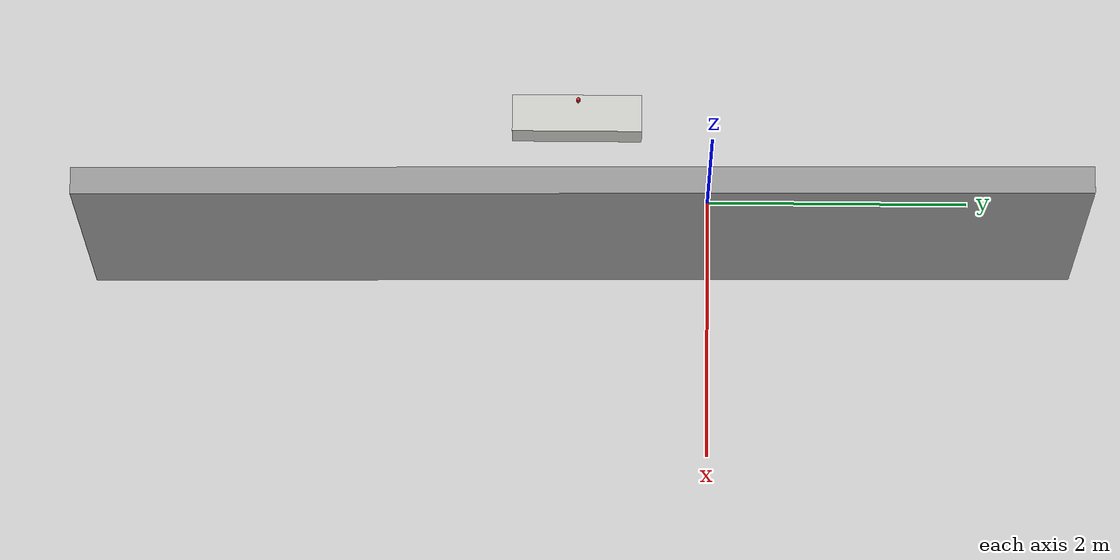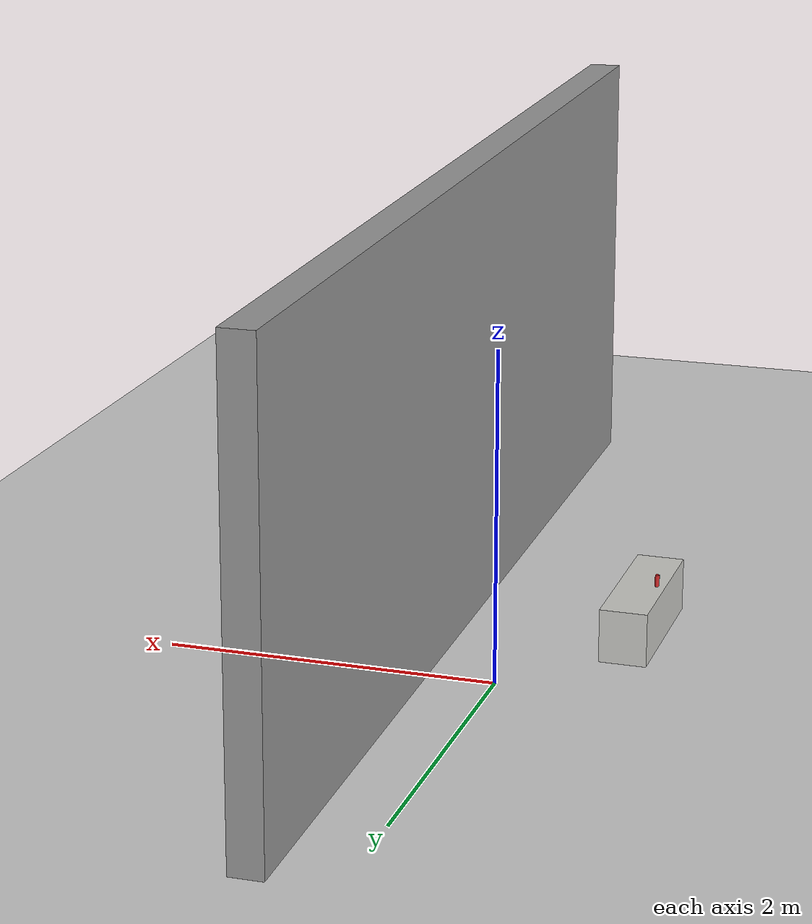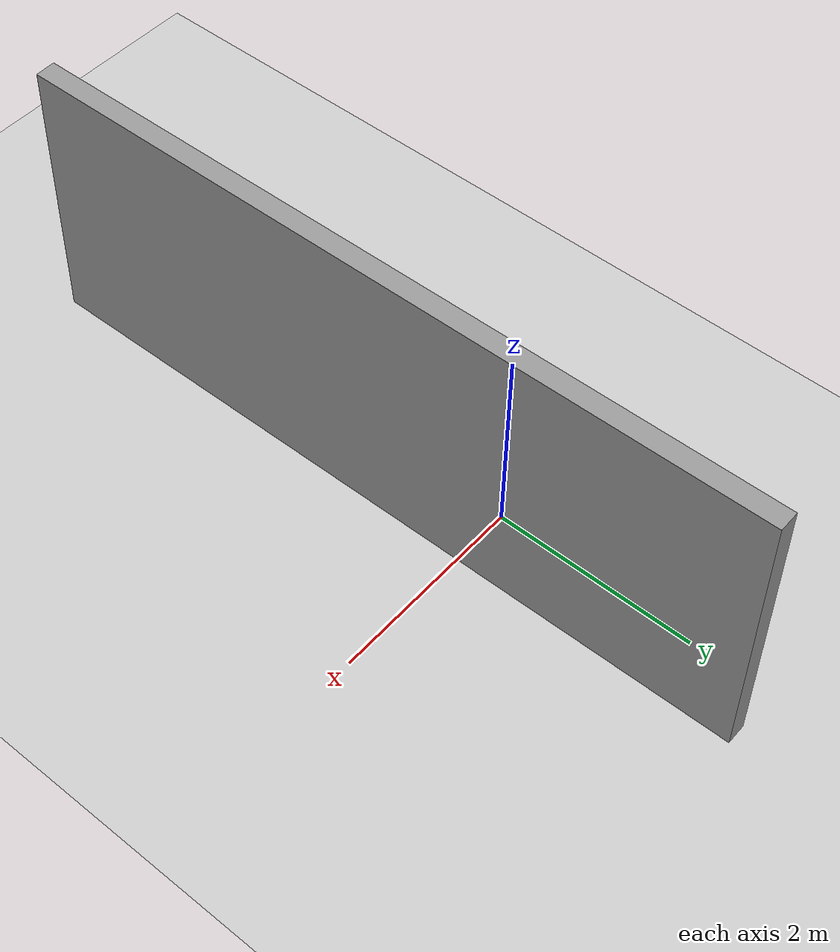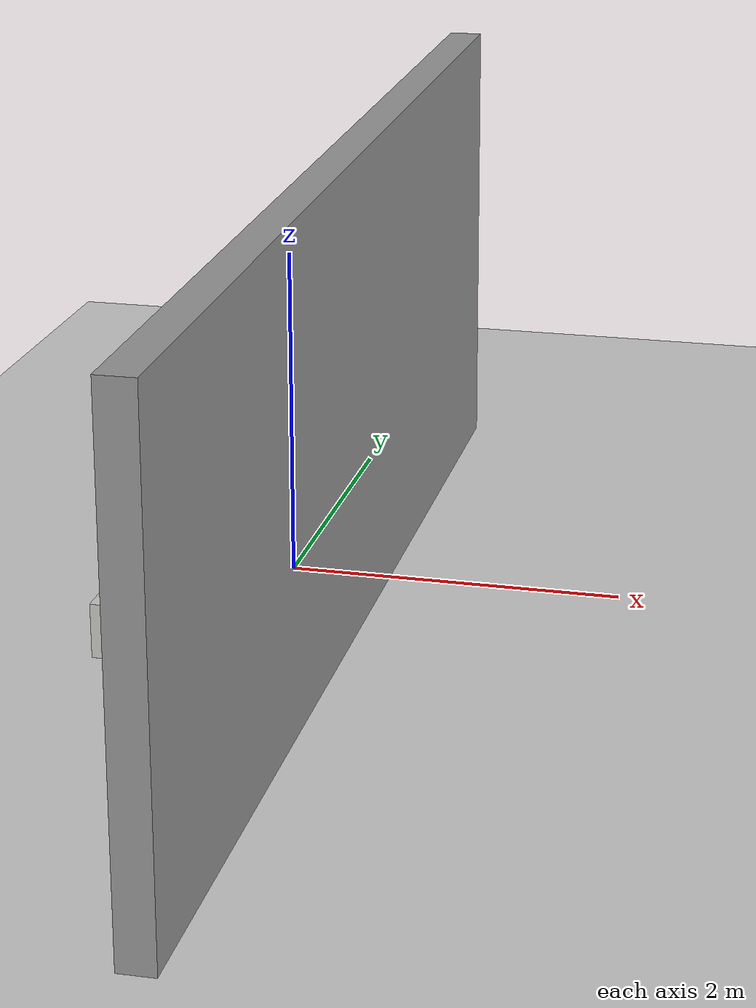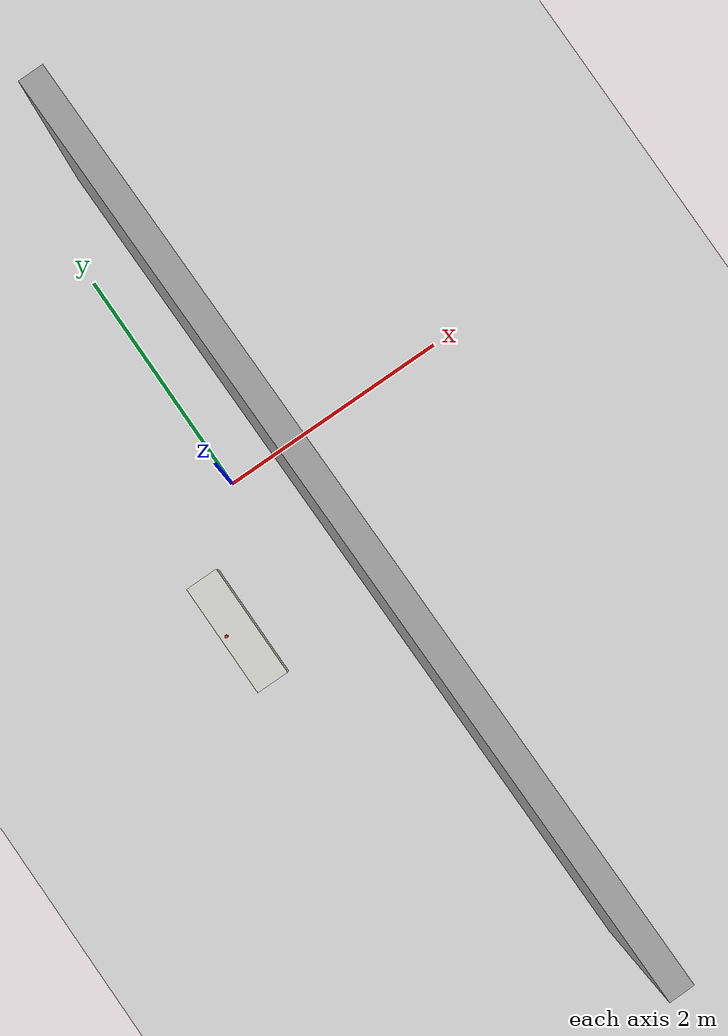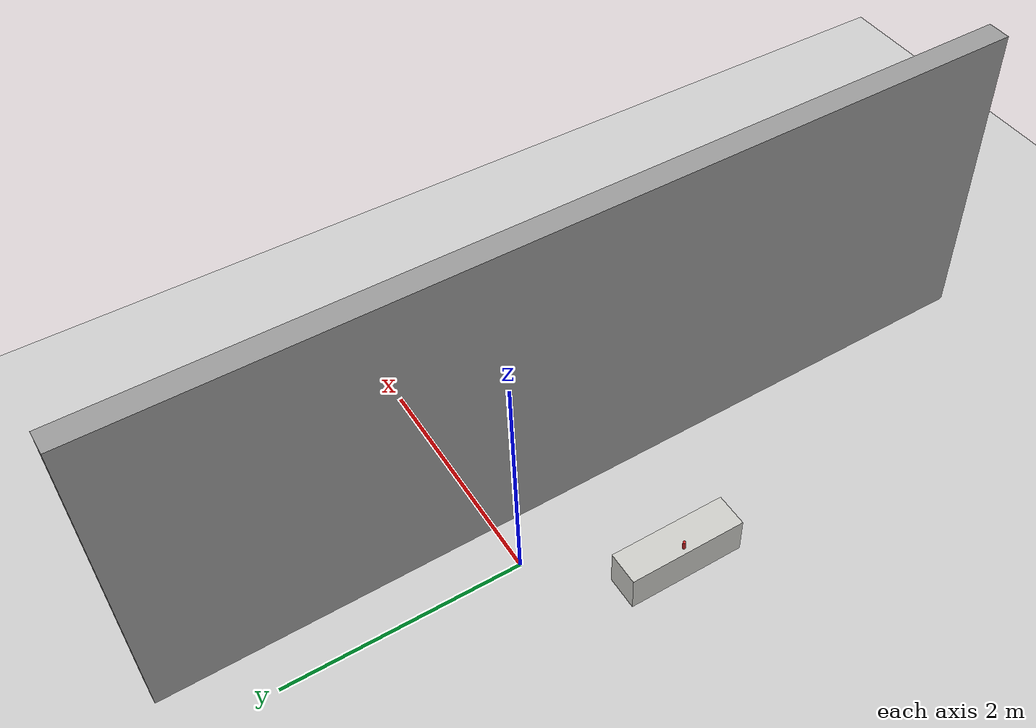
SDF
<sdf version="1.6">
 <world name="default">
  <light name="sun" type="directional">
   <pose>0 0 10 0 -0 0</pose>
   <diffuse>0.8 0.8 0.8 1</diffuse>
   <specular>0.2 0.2 0.2 1</specular>
   <attenuation>
    <range>1000</range>
    <constant>0.9</constant>
    <linear>0.01</linear>
    <quadratic>0.001</quadratic>
   </attenuation>
   <direction>-0.5 0.1 -0.9</direction>
  </light>
  <model name="ground_plane">
   <static>1</static>
   <link name="link">
    <collision name="collision">
     <geometry><plane><normal>0 0 1</normal><size>100 100</size></plane></geometry>
     <surface>
      <contact><collide_bitmask>65535</collide_bitmask></contact>
      <friction><ode><mu>100</mu><mu2>50</mu2></ode></friction>
     </surface>
    </collision>
    <visual name="visual">
     <cast_shadows>0</cast_shadows>
     <geometry><plane><normal>0 0 1</normal><size>100 100</size></plane></geometry>
     <material>
      <script><uri>file://media/materials/scripts/gazebo.material</uri><name>Gazebo/Grey</name></script>
     </material>
    </visual>
   </link>
  </model>
  <physics name="default_physics" default="0" type="ode">
   <real_time_update_rate>1000</real_time_update_rate>
   <max_step_size>0.001</max_step_size>
   <real_time_factor>1</real_time_factor>
   <ode>
    <solver>
     <type>quick</type>
     <iters>150</iters>
     <precon_iters>0</precon_iters>
     <sor>1.4</sor>
     <use_dynamic_moi_rescaling>1</use_dynamic_moi_rescaling>
    </solver>
    <constraints>
     <cfm>1e-05</cfm>
     <erp>0.2</erp>
     <contact_max_correcting_vel>2000</contact_max_correcting_vel>
     <contact_surface_layer>0.01</contact_surface_layer>
    </constraints>
   </ode>
  </physics>
  <scene><ambient>0.4 0.4 0.4 1</ambient><background>0.7 0.7 0.7 1</background><shadows>1</shadows></scene>
  <gravity>0 0 -9.8</gravity>
  <magnetic_field>6e-06 2.3e-05 -4.2e-05</magnetic_field>
  <atmosphere type="adiabatic"/>
  <audio><device>default</device></audio>
  <spherical_coordinates>
   <surface_model>EARTH_WGS84</surface_model>
   <latitude_deg>0</latitude_deg>
   <longitude_deg>0</longitude_deg>
   <elevation>0</elevation>
   <heading_deg>0</heading_deg>
  </spherical_coordinates>
  <model name="small_table">
   <link name="link">
    <inertial>
     <mass>0.815675</mass>
     <inertia>
      <ixx>0.075238</ixx>
      <ixy>0</ixy>
      <ixz>0</ixz>
      <iyy>0.0128756</iyy>
      <iyz>0</iyz>
      <izz>0.0735833</izz>
     </inertia>
    </inertial>
    <visual name="visual">
     <geometry><box><size>0.287297 1 0.326929</size></box></geometry>
     <material>
      <script><name>Gazebo/CeilingTiled</name><uri>file://media/materials/scripts/gazebo.material</uri></script>
      <shader type="pixel"><normal_map>__default__</normal_map></shader>
      <ambient>0.7 0.7 0.7 1</ambient>
      <diffuse>0.9 0.9 0.9 1</diffuse>
      <specular>0.01 0.01 0.01 1</specular>
      <emissive>0 0 0 1</emissive>
     </material>
    </visual>
    <collision name="collision">
     <geometry><box><size>0.287297 1 0.326929</size></box></geometry>
     <surface>
      <friction>
       <ode><mu>1</mu><mu2>1</mu2><fdir1>0 0 0</fdir1><slip1>0</slip1><slip2>0</slip2></ode>
       <torsional>
        <coefficient>1</coefficient>
        <patch_radius>0</patch_radius>
        <surface_radius>0</surface_radius>
        <use_patch_radius>1</use_patch_radius>
        <ode><slip>0</slip></ode>
       </torsional>
      </friction>
      <bounce><restitution_coefficient>0</restitution_coefficient><threshold>1e+06</threshold></bounce>
      <contact>
       <collide_without_contact>0</collide_without_contact>
       <collide_without_contact_bitmask>1</collide_without_contact_bitmask>
       <collide_bitmask>1</collide_bitmask>
       <ode>
        <soft_cfm>0</soft_cfm>
        <soft_erp>0.2</soft_erp>
        <kp>1e+13</kp>
        <kd>1</kd>
        <max_vel>0.01</max_vel>
        <min_depth>0</min_depth>
       </ode>
       <bullet>
        <split_impulse>1</split_impulse>
        <split_impulse_penetration_threshold>-0.01</split_impulse_penetration_threshold>
        <soft_cfm>0</soft_cfm>
        <soft_erp>0.2</soft_erp>
        <kp>1e+13</kp>
        <kd>1</kd>
       </bullet>
      </contact>
     </surface>
    </collision>
   </link>
   <static>0</static>
   <pose>-0.631804 -1.0157 0.158322 -6.4e-05 -0.003412 1.1e-05</pose>
  </model>
  <model name="grey_wall">
   <static>1</static>
   <link name="link">
    <pose>0 0 1.4 0 -0 0</pose>
    <collision name="collision"><geometry><box><size>7.5 0.2 2.8</size></box></geometry></collision>
    <visual name="visual">
     <cast_shadows>0</cast_shadows>
     <geometry><box><size>7.5 0.2 2.8</size></box></geometry>
     <material>
      <script>
       <uri>model://grey_wall/materials/scripts</uri>
       <uri>model://grey_wall/materials/textures</uri>
       <name>vrc/grey_wall</name>
      </script>
     </material>
    </visual>
   </link>
   <pose>0.512895 -0.963008 0 0 0 -1.56179</pose>
  </model>
  <model name="grasp_cylinder_2">
   <link name="link">
    <inertial>
     <mass>0.05</mass>
     <inertia>
      <ixx>2.297e-05</ixx>
      <ixy>0</ixy>
      <ixz>0</ixz>
      <iyy>2.297e-05</iyy>
      <iyz>0</iyz>
      <izz>4.31e-06</izz>
     </inertia>
    </inertial>
    <visual name="visual">
     <geometry><cylinder><radius>0.0131252</radius><length>0.0706744</length></cylinder></geometry>
     <material>
      <script><name>Gazebo/Red</name><uri>file://media/materials/scripts/gazebo.material</uri></script>
      <shader type="vertex"><normal_map>__default__</normal_map></shader>
      <ambient>1 0 0 1</ambient>
      <diffuse>0.7 0.7 0.7 1</diffuse>
      <specular>0.01 0.01 0.01 1</specular>
      <emissive>0 0 0 1</emissive>
     </material>
    </visual>
    <collision name="collision">
     <geometry><cylinder><radius>0.013125</radius><length>0.070674</length></cylinder></geometry>
     <surface>
      <friction>
       <ode><mu>100</mu><mu2>100</mu2><fdir1>0 0 0</fdir1><slip1>0</slip1><slip2>0</slip2></ode>
       <torsional>
        <coefficient>1</coefficient>
        <patch_radius>0</patch_radius>
        <surface_radius>0</surface_radius>
        <use_patch_radius>1</use_patch_radius>
        <ode><slip>0</slip></ode>
       </torsional>
      </friction>
      <bounce><restitution_coefficient>0</restitution_coefficient><threshold>1e+06</threshold></bounce>
      <contact>
       <collide_without_contact>0</collide_without_contact>
       <collide_without_contact_bitmask>1</collide_without_contact_bitmask>
       <collide_bitmask>1</collide_bitmask>
       <ode>
        <soft_cfm>0</soft_cfm>
        <soft_erp>0.2</soft_erp>
        <kp>1e+13</kp>
        <kd>1</kd>
        <max_vel>0.01</max_vel>
        <min_depth>0</min_depth>
       </ode>
       <bullet>
        <split_impulse>1</split_impulse>
        <split_impulse_penetration_threshold>-0.01</split_impulse_penetration_threshold>
        <soft_cfm>0</soft_cfm>
        <soft_erp>0.2</soft_erp>
        <kp>1e+13</kp>
        <kd>1</kd>
       </bullet>
      </contact>
     </surface>
    </collision>
   </link>
   <static>0</static>
   <pose>-0.723363 -1.00584 0.356835 -8.8e-05 -0.004283 -0.002802</pose>
  </model>
 </world>
</sdf>
